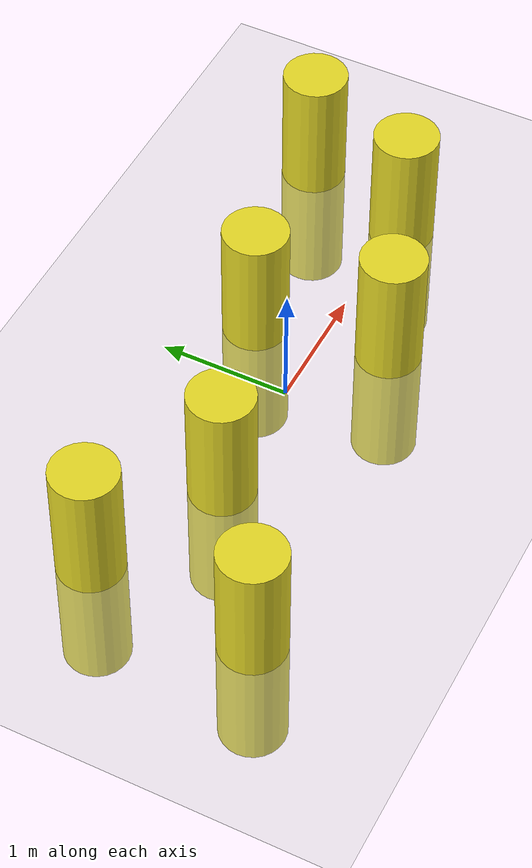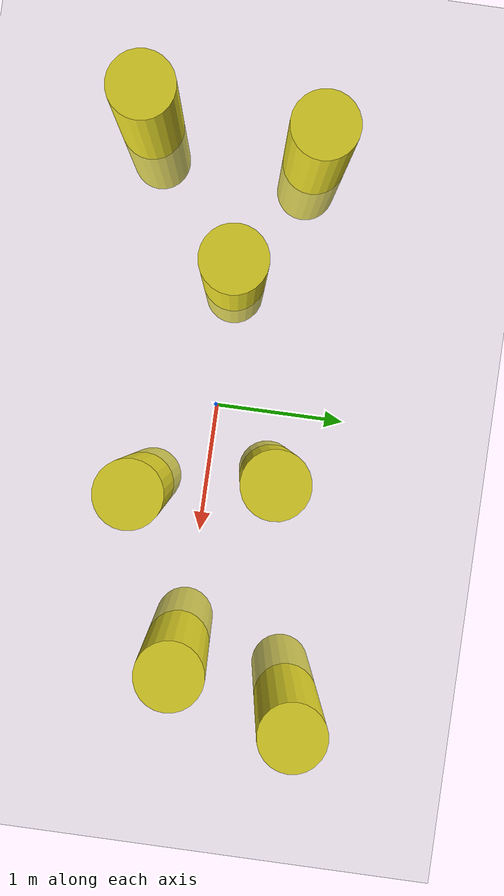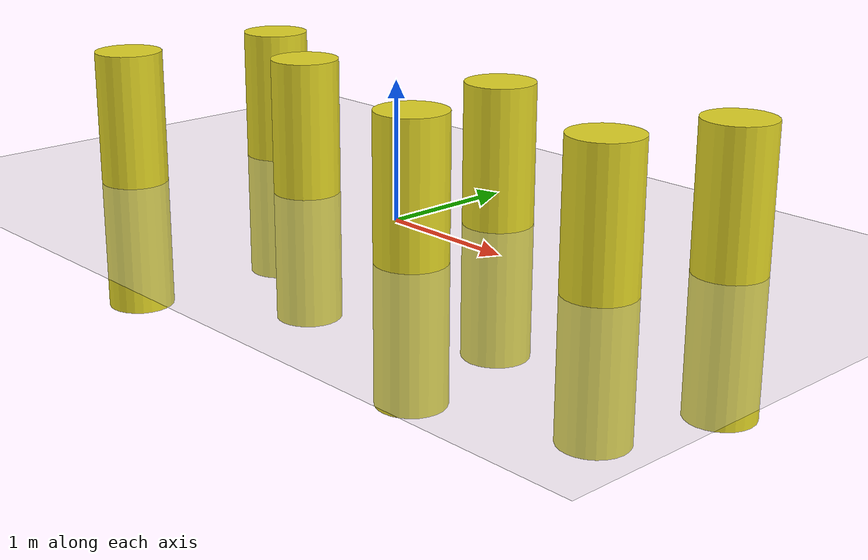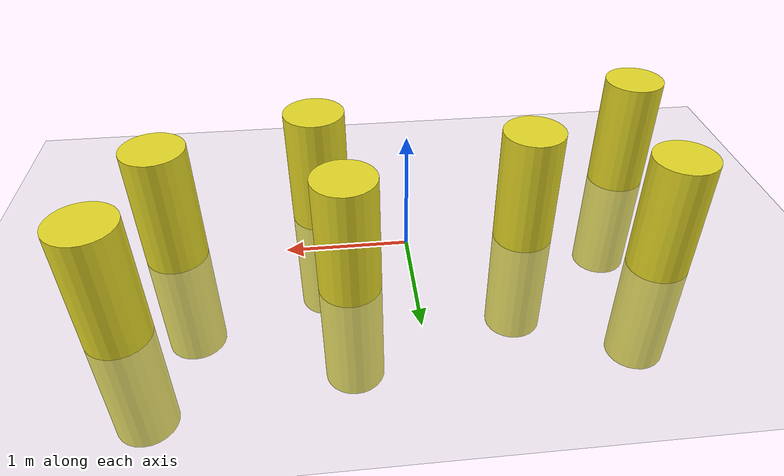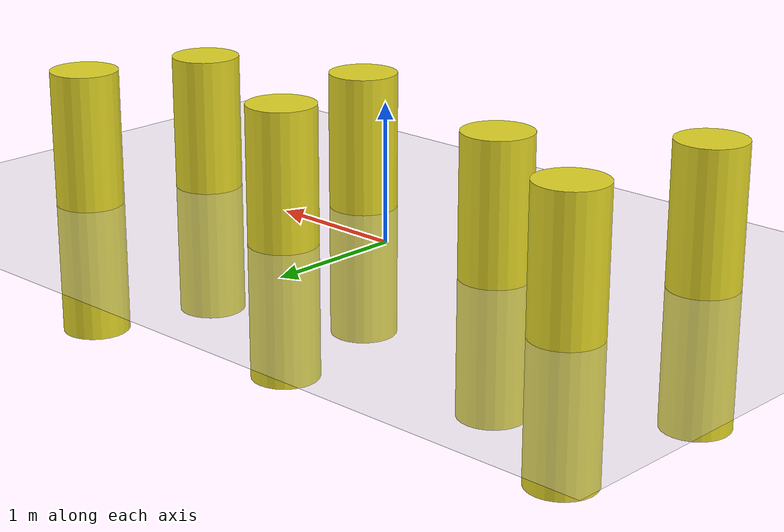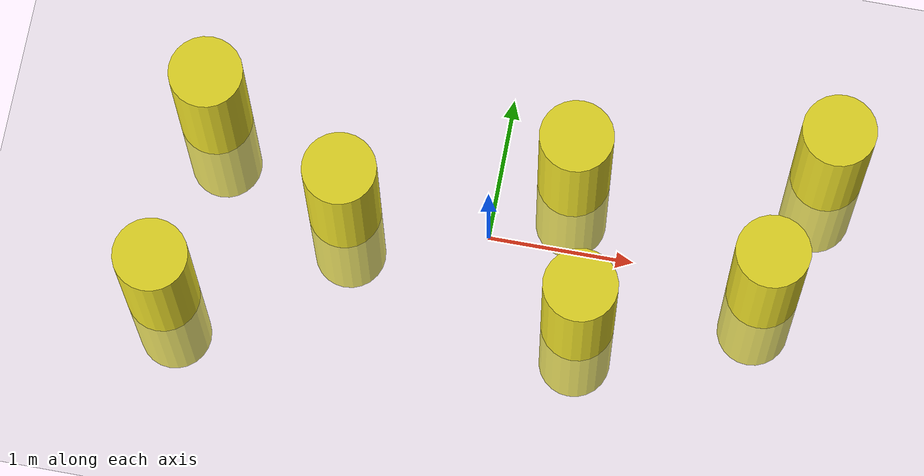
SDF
<sdf version="1.5">
 <world name="default">
  <include><uri>model://sun</uri></include>
  <include><uri>model://ground_plane</uri></include>
  <physics name="default_physics" default="0" type="ode">
   <gravity>0 0 -9.8066</gravity>
   <ode>
    <solver>
     <type>quick</type>
     <iters>150</iters>
     <sor>1.3</sor>
     <use_dynamic_moi_rescaling>0</use_dynamic_moi_rescaling>
    </solver>
    <constraints>
     <cfm>0.00001</cfm>
     <erp>0.2</erp>
     <contact_max_correcting_vel>1000</contact_max_correcting_vel>
     <contact_surface_layer>0.01</contact_surface_layer>
    </constraints>
   </ode>
   <max_step_size>0.004</max_step_size>
   <real_time_factor>1000.0</real_time_factor>
   <real_time_update_rate>250</real_time_update_rate>
   <magnetic_field>6.0e-6 2.3e-5 -4.2e-5</magnetic_field>
  </physics>
  <model name="pillar_s_1">
   <pose>2.2 0.85 0 0 0 0</pose>
   <link name="link">
    <inertial><mass>5000</mass></inertial>
    <visual name="visual">
     <geometry><cylinder><radius>0.25</radius><length>2</length></cylinder></geometry>
     <material>
      <script><name>Gazebo/Yellow</name><uri>file://media/materials/scripts/gazebo.material</uri></script>
      <shader type="pixel"><normal_map>__default__</normal_map></shader>
      <ambient>0.0 0.914 0.0 1</ambient>
     </material>
    </visual>
    <collision name="collision">
     <geometry><cylinder><radius>0.25</radius><length>2</length></cylinder></geometry>
    </collision>
   </link>
   <static>0</static>
  </model>
  <model name="pillar_s_2">
   <pose>0.7 -0.5 0 0 0 0</pose>
   <link name="link">
    <inertial><mass>5000</mass></inertial>
    <visual name="visual">
     <geometry><cylinder><radius>0.25</radius><length>2</length></cylinder></geometry>
     <material>
      <script><name>Gazebo/Yellow</name><uri>file://media/materials/scripts/gazebo.material</uri></script>
      <shader type="pixel"><normal_map>__default__</normal_map></shader>
      <ambient>0.0 0.914 0.0 1</ambient>
     </material>
    </visual>
    <collision name="collision">
     <geometry><cylinder><radius>0.25</radius><length>2</length></cylinder></geometry>
    </collision>
   </link>
   <static>0</static>
  </model>
  <model name="pillar_s_3">
   <pose>-1 0 0 0 0 0</pose>
   <link name="link">
    <inertial><mass>5000</mass></inertial>
    <visual name="visual">
     <geometry><cylinder><radius>0.25</radius><length>2</length></cylinder></geometry>
     <material>
      <script><name>Gazebo/Yellow</name><uri>file://media/materials/scripts/gazebo.material</uri></script>
      <shader type="pixel"><normal_map>__default__</normal_map></shader>
      <ambient>0.0 0.914 0.0 1</ambient>
     </material>
    </visual>
    <collision name="collision">
     <geometry><cylinder><radius>0.25</radius><length>2</length></cylinder></geometry>
    </collision>
   </link>
   <static>0</static>
  </model>
  <model name="pillar_s_4">
   <pose>1.9 -0.05 0 0 0 0</pose>
   <link name="link">
    <inertial><mass>5000</mass></inertial>
    <visual name="visual">
     <geometry><cylinder><radius>0.25</radius><length>2</length></cylinder></geometry>
     <material>
      <script><name>Gazebo/Yellow</name><uri>file://media/materials/scripts/gazebo.material</uri></script>
      <shader type="pixel"><normal_map>__default__</normal_map></shader>
      <ambient>0.99 0.914 0.3 1</ambient>
     </material>
    </visual>
    <collision name="collision">
     <geometry><cylinder><radius>0.25</radius><length>2</length></cylinder></geometry>
    </collision>
   </link>
   <static>0</static>
  </model>
  <model name="pillar_s_5">
   <pose>0.5 0.5 0 0 0 0</pose>
   <link name="link">
    <inertial><mass>5000</mass></inertial>
    <visual name="visual">
     <geometry><cylinder><radius>0.25</radius><length>2</length></cylinder></geometry>
     <material>
      <script><name>Gazebo/Yellow</name><uri>file://media/materials/scripts/gazebo.material</uri></script>
      <shader type="pixel"><normal_map>__default__</normal_map></shader>
      <ambient>0.99 0.914 0.3 1</ambient>
     </material>
    </visual>
    <collision name="collision">
     <geometry><cylinder><radius>0.25</radius><length>2</length></cylinder></geometry>
    </collision>
   </link>
   <static>0</static>
  </model>
  <model name="pillar_s_6">
   <pose>-2 0.5 0 0 0 0</pose>
   <link name="link">
    <inertial><mass>5000</mass></inertial>
    <visual name="visual">
     <geometry><cylinder><radius>0.25</radius><length>2</length></cylinder></geometry>
     <material>
      <script><name>Gazebo/Yellow</name><uri>file://media/materials/scripts/gazebo.material</uri></script>
      <shader type="pixel"><normal_map>__default__</normal_map></shader>
      <ambient>0.99 0.914 0.3 1</ambient>
     </material>
    </visual>
    <collision name="collision">
     <geometry><cylinder><radius>0.25</radius><length>2</length></cylinder></geometry>
    </collision>
   </link>
   <static>0</static>
  </model>
  <model name="pillar_s_7">
   <pose>-2.1 -0.8 0 0 0 0</pose>
   <link name="link">
    <inertial><mass>5000</mass></inertial>
    <visual name="visual">
     <geometry><cylinder><radius>0.25</radius><length>2</length></cylinder></geometry>
     <material>
      <script><name>Gazebo/Yellow</name><uri>file://media/materials/scripts/gazebo.material</uri></script>
      <shader type="pixel"><normal_map>__default__</normal_map></shader>
      <ambient>0.99 0.914 0.3 1</ambient>
     </material>
    </visual>
    <collision name="collision">
     <geometry><cylinder><radius>0.25</radius><length>2</length></cylinder></geometry>
    </collision>
   </link>
   <static>0</static>
  </model>
 </world>
</sdf>
